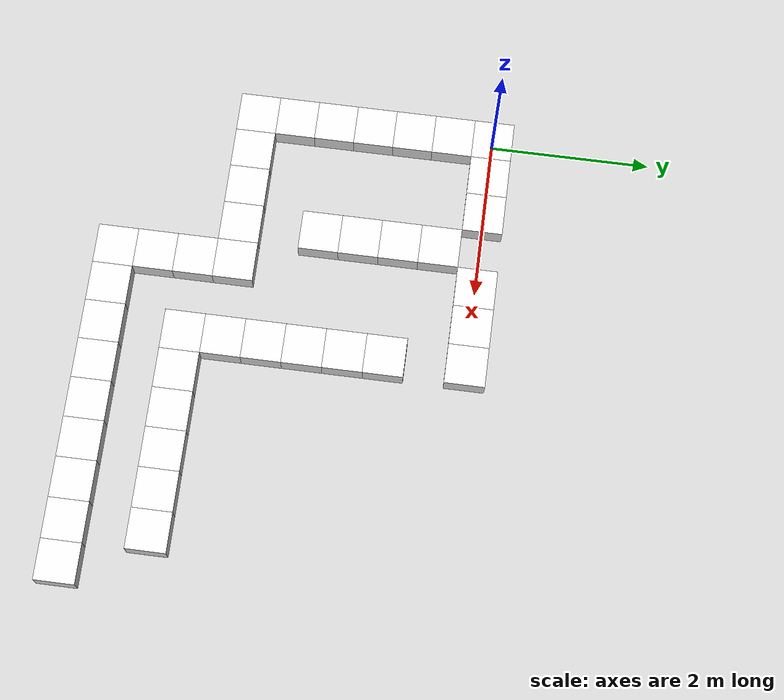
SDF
<?xml version="1.0" ?>
    <sdf version="1.6">
    <world name="default">

        <!-- Define a simple ground plane -->
        <include>
            <uri>model://ground_plane</uri>
        </include>

        <model name="maze_wall_0.0_0.0">
        <static>true</static>
        <link name="link">
            <collision name="collision">
            <geometry>
                <box>
                <size>0.5 0.5 0.5</size>
                </box>
            </geometry>
            </collision>
            <visual name="visual">
            <geometry>
                <box>
                <size>0.5 0.5 0.5</size>
                </box>
            </geometry>

            <material>
                <script>
                <uri>file://media/materials/scripts/gazebo.material</uri>
                <name>Gazebo/White</name>
                </script>
            </material>

            </visual>
        </link>
        <pose>0.0 0.0 0 0 0 0</pose>
        </model>

        <model name="maze_wall_0.5_0.0">
        <static>true</static>
        <link name="link">
            <collision name="collision">
            <geometry>
                <box>
                <size>0.5 0.5 0.5</size>
                </box>
            </geometry>
            </collision>
            <visual name="visual">
            <geometry>
                <box>
                <size>0.5 0.5 0.5</size>
                </box>
            </geometry>

            <material>
                <script>
                <uri>file://media/materials/scripts/gazebo.material</uri>
                <name>Gazebo/White</name>
                </script>
            </material>

            </visual>
        </link>
        <pose>0.5 0.0 0 0 0 0</pose>
        </model>

        <model name="maze_wall_1.0_0.0">
        <static>true</static>
        <link name="link">
            <collision name="collision">
            <geometry>
                <box>
                <size>0.5 0.5 0.5</size>
                </box>
            </geometry>
            </collision>
            <visual name="visual">
            <geometry>
                <box>
                <size>0.5 0.5 0.5</size>
                </box>
            </geometry>

            <material>
                <script>
                <uri>file://media/materials/scripts/gazebo.material</uri>
                <name>Gazebo/White</name>
                </script>
            </material>

            </visual>
        </link>
        <pose>1.0 0.0 0 0 0 0</pose>
        </model>

        <model name="maze_wall_2.0_0.0">
        <static>true</static>
        <link name="link">
            <collision name="collision">
            <geometry>
                <box>
                <size>0.5 0.5 0.5</size>
                </box>
            </geometry>
            </collision>
            <visual name="visual">
            <geometry>
                <box>
                <size>0.5 0.5 0.5</size>
                </box>
            </geometry>

            <material>
                <script>
                <uri>file://media/materials/scripts/gazebo.material</uri>
                <name>Gazebo/White</name>
                </script>
            </material>

            </visual>
        </link>
        <pose>2.0 0.0 0 0 0 0</pose>
        </model>

        <model name="maze_wall_2.5_0.0">
        <static>true</static>
        <link name="link">
            <collision name="collision">
            <geometry>
                <box>
                <size>0.5 0.5 0.5</size>
                </box>
            </geometry>
            </collision>
            <visual name="visual">
            <geometry>
                <box>
                <size>0.5 0.5 0.5</size>
                </box>
            </geometry>

            <material>
                <script>
                <uri>file://media/materials/scripts/gazebo.material</uri>
                <name>Gazebo/White</name>
                </script>
            </material>

            </visual>
        </link>
        <pose>2.5 0.0 0 0 0 0</pose>
        </model>

        <model name="maze_wall_3.0_0.0">
        <static>true</static>
        <link name="link">
            <collision name="collision">
            <geometry>
                <box>
                <size>0.5 0.5 0.5</size>
                </box>
            </geometry>
            </collision>
            <visual name="visual">
            <geometry>
                <box>
                <size>0.5 0.5 0.5</size>
                </box>
            </geometry>

            <material>
                <script>
                <uri>file://media/materials/scripts/gazebo.material</uri>
                <name>Gazebo/White</name>
                </script>
            </material>

            </visual>
        </link>
        <pose>3.0 0.0 0 0 0 0</pose>
        </model>

        <model name="maze_wall_0.0_-0.5">
        <static>true</static>
        <link name="link">
            <collision name="collision">
            <geometry>
                <box>
                <size>0.5 0.5 0.5</size>
                </box>
            </geometry>
            </collision>
            <visual name="visual">
            <geometry>
                <box>
                <size>0.5 0.5 0.5</size>
                </box>
            </geometry>

            <material>
                <script>
                <uri>file://media/materials/scripts/gazebo.material</uri>
                <name>Gazebo/White</name>
                </script>
            </material>

            </visual>
        </link>
        <pose>0.0 -0.5 0 0 0 0</pose>
        </model>

        <model name="maze_wall_1.5_-0.5">
        <static>true</static>
        <link name="link">
            <collision name="collision">
            <geometry>
                <box>
                <size>0.5 0.5 0.5</size>
                </box>
            </geometry>
            </collision>
            <visual name="visual">
            <geometry>
                <box>
                <size>0.5 0.5 0.5</size>
                </box>
            </geometry>

            <material>
                <script>
                <uri>file://media/materials/scripts/gazebo.material</uri>
                <name>Gazebo/White</name>
                </script>
            </material>

            </visual>
        </link>
        <pose>1.5 -0.5 0 0 0 0</pose>
        </model>

        <model name="maze_wall_0.0_-1.0">
        <static>true</static>
        <link name="link">
            <collision name="collision">
            <geometry>
                <box>
                <size>0.5 0.5 0.5</size>
                </box>
            </geometry>
            </collision>
            <visual name="visual">
            <geometry>
                <box>
                <size>0.5 0.5 0.5</size>
                </box>
            </geometry>

            <material>
                <script>
                <uri>file://media/materials/scripts/gazebo.material</uri>
                <name>Gazebo/White</name>
                </script>
            </material>

            </visual>
        </link>
        <pose>0.0 -1.0 0 0 0 0</pose>
        </model>

        <model name="maze_wall_1.5_-1.0">
        <static>true</static>
        <link name="link">
            <collision name="collision">
            <geometry>
                <box>
                <size>0.5 0.5 0.5</size>
                </box>
            </geometry>
            </collision>
            <visual name="visual">
            <geometry>
                <box>
                <size>0.5 0.5 0.5</size>
                </box>
            </geometry>

            <material>
                <script>
                <uri>file://media/materials/scripts/gazebo.material</uri>
                <name>Gazebo/White</name>
                </script>
            </material>

            </visual>
        </link>
        <pose>1.5 -1.0 0 0 0 0</pose>
        </model>

        <model name="maze_wall_3.0_-1.0">
        <static>true</static>
        <link name="link">
            <collision name="collision">
            <geometry>
                <box>
                <size>0.5 0.5 0.5</size>
                </box>
            </geometry>
            </collision>
            <visual name="visual">
            <geometry>
                <box>
                <size>0.5 0.5 0.5</size>
                </box>
            </geometry>

            <material>
                <script>
                <uri>file://media/materials/scripts/gazebo.material</uri>
                <name>Gazebo/White</name>
                </script>
            </material>

            </visual>
        </link>
        <pose>3.0 -1.0 0 0 0 0</pose>
        </model>

        <model name="maze_wall_0.0_-1.5">
        <static>true</static>
        <link name="link">
            <collision name="collision">
            <geometry>
                <box>
                <size>0.5 0.5 0.5</size>
                </box>
            </geometry>
            </collision>
            <visual name="visual">
            <geometry>
                <box>
                <size>0.5 0.5 0.5</size>
                </box>
            </geometry>

            <material>
                <script>
                <uri>file://media/materials/scripts/gazebo.material</uri>
                <name>Gazebo/White</name>
                </script>
            </material>

            </visual>
        </link>
        <pose>0.0 -1.5 0 0 0 0</pose>
        </model>

        <model name="maze_wall_1.5_-1.5">
        <static>true</static>
        <link name="link">
            <collision name="collision">
            <geometry>
                <box>
                <size>0.5 0.5 0.5</size>
                </box>
            </geometry>
            </collision>
            <visual name="visual">
            <geometry>
                <box>
                <size>0.5 0.5 0.5</size>
                </box>
            </geometry>

            <material>
                <script>
                <uri>file://media/materials/scripts/gazebo.material</uri>
                <name>Gazebo/White</name>
                </script>
            </material>

            </visual>
        </link>
        <pose>1.5 -1.5 0 0 0 0</pose>
        </model>

        <model name="maze_wall_3.0_-1.5">
        <static>true</static>
        <link name="link">
            <collision name="collision">
            <geometry>
                <box>
                <size>0.5 0.5 0.5</size>
                </box>
            </geometry>
            </collision>
            <visual name="visual">
            <geometry>
                <box>
                <size>0.5 0.5 0.5</size>
                </box>
            </geometry>

            <material>
                <script>
                <uri>file://media/materials/scripts/gazebo.material</uri>
                <name>Gazebo/White</name>
                </script>
            </material>

            </visual>
        </link>
        <pose>3.0 -1.5 0 0 0 0</pose>
        </model>

        <model name="maze_wall_0.0_-2.0">
        <static>true</static>
        <link name="link">
            <collision name="collision">
            <geometry>
                <box>
                <size>0.5 0.5 0.5</size>
                </box>
            </geometry>
            </collision>
            <visual name="visual">
            <geometry>
                <box>
                <size>0.5 0.5 0.5</size>
                </box>
            </geometry>

            <material>
                <script>
                <uri>file://media/materials/scripts/gazebo.material</uri>
                <name>Gazebo/White</name>
                </script>
            </material>

            </visual>
        </link>
        <pose>0.0 -2.0 0 0 0 0</pose>
        </model>

        <model name="maze_wall_1.5_-2.0">
        <static>true</static>
        <link name="link">
            <collision name="collision">
            <geometry>
                <box>
                <size>0.5 0.5 0.5</size>
                </box>
            </geometry>
            </collision>
            <visual name="visual">
            <geometry>
                <box>
                <size>0.5 0.5 0.5</size>
                </box>
            </geometry>

            <material>
                <script>
                <uri>file://media/materials/scripts/gazebo.material</uri>
                <name>Gazebo/White</name>
                </script>
            </material>

            </visual>
        </link>
        <pose>1.5 -2.0 0 0 0 0</pose>
        </model>

        <model name="maze_wall_3.0_-2.0">
        <static>true</static>
        <link name="link">
            <collision name="collision">
            <geometry>
                <box>
                <size>0.5 0.5 0.5</size>
                </box>
            </geometry>
            </collision>
            <visual name="visual">
            <geometry>
                <box>
                <size>0.5 0.5 0.5</size>
                </box>
            </geometry>

            <material>
                <script>
                <uri>file://media/materials/scripts/gazebo.material</uri>
                <name>Gazebo/White</name>
                </script>
            </material>

            </visual>
        </link>
        <pose>3.0 -2.0 0 0 0 0</pose>
        </model>

        <model name="maze_wall_0.0_-2.5">
        <static>true</static>
        <link name="link">
            <collision name="collision">
            <geometry>
                <box>
                <size>0.5 0.5 0.5</size>
                </box>
            </geometry>
            </collision>
            <visual name="visual">
            <geometry>
                <box>
                <size>0.5 0.5 0.5</size>
                </box>
            </geometry>

            <material>
                <script>
                <uri>file://media/materials/scripts/gazebo.material</uri>
                <name>Gazebo/White</name>
                </script>
            </material>

            </visual>
        </link>
        <pose>0.0 -2.5 0 0 0 0</pose>
        </model>

        <model name="maze_wall_3.0_-2.5">
        <static>true</static>
        <link name="link">
            <collision name="collision">
            <geometry>
                <box>
                <size>0.5 0.5 0.5</size>
                </box>
            </geometry>
            </collision>
            <visual name="visual">
            <geometry>
                <box>
                <size>0.5 0.5 0.5</size>
                </box>
            </geometry>

            <material>
                <script>
                <uri>file://media/materials/scripts/gazebo.material</uri>
                <name>Gazebo/White</name>
                </script>
            </material>

            </visual>
        </link>
        <pose>3.0 -2.5 0 0 0 0</pose>
        </model>

        <model name="maze_wall_0.0_-3.0">
        <static>true</static>
        <link name="link">
            <collision name="collision">
            <geometry>
                <box>
                <size>0.5 0.5 0.5</size>
                </box>
            </geometry>
            </collision>
            <visual name="visual">
            <geometry>
                <box>
                <size>0.5 0.5 0.5</size>
                </box>
            </geometry>

            <material>
                <script>
                <uri>file://media/materials/scripts/gazebo.material</uri>
                <name>Gazebo/White</name>
                </script>
            </material>

            </visual>
        </link>
        <pose>0.0 -3.0 0 0 0 0</pose>
        </model>

        <model name="maze_wall_0.5_-3.0">
        <static>true</static>
        <link name="link">
            <collision name="collision">
            <geometry>
                <box>
                <size>0.5 0.5 0.5</size>
                </box>
            </geometry>
            </collision>
            <visual name="visual">
            <geometry>
                <box>
                <size>0.5 0.5 0.5</size>
                </box>
            </geometry>

            <material>
                <script>
                <uri>file://media/materials/scripts/gazebo.material</uri>
                <name>Gazebo/White</name>
                </script>
            </material>

            </visual>
        </link>
        <pose>0.5 -3.0 0 0 0 0</pose>
        </model>

        <model name="maze_wall_1.0_-3.0">
        <static>true</static>
        <link name="link">
            <collision name="collision">
            <geometry>
                <box>
                <size>0.5 0.5 0.5</size>
                </box>
            </geometry>
            </collision>
            <visual name="visual">
            <geometry>
                <box>
                <size>0.5 0.5 0.5</size>
                </box>
            </geometry>

            <material>
                <script>
                <uri>file://media/materials/scripts/gazebo.material</uri>
                <name>Gazebo/White</name>
                </script>
            </material>

            </visual>
        </link>
        <pose>1.0 -3.0 0 0 0 0</pose>
        </model>

        <model name="maze_wall_1.5_-3.0">
        <static>true</static>
        <link name="link">
            <collision name="collision">
            <geometry>
                <box>
                <size>0.5 0.5 0.5</size>
                </box>
            </geometry>
            </collision>
            <visual name="visual">
            <geometry>
                <box>
                <size>0.5 0.5 0.5</size>
                </box>
            </geometry>

            <material>
                <script>
                <uri>file://media/materials/scripts/gazebo.material</uri>
                <name>Gazebo/White</name>
                </script>
            </material>

            </visual>
        </link>
        <pose>1.5 -3.0 0 0 0 0</pose>
        </model>

        <model name="maze_wall_2.0_-3.0">
        <static>true</static>
        <link name="link">
            <collision name="collision">
            <geometry>
                <box>
                <size>0.5 0.5 0.5</size>
                </box>
            </geometry>
            </collision>
            <visual name="visual">
            <geometry>
                <box>
                <size>0.5 0.5 0.5</size>
                </box>
            </geometry>

            <material>
                <script>
                <uri>file://media/materials/scripts/gazebo.material</uri>
                <name>Gazebo/White</name>
                </script>
            </material>

            </visual>
        </link>
        <pose>2.0 -3.0 0 0 0 0</pose>
        </model>

        <model name="maze_wall_3.0_-3.0">
        <static>true</static>
        <link name="link">
            <collision name="collision">
            <geometry>
                <box>
                <size>0.5 0.5 0.5</size>
                </box>
            </geometry>
            </collision>
            <visual name="visual">
            <geometry>
                <box>
                <size>0.5 0.5 0.5</size>
                </box>
            </geometry>

            <material>
                <script>
                <uri>file://media/materials/scripts/gazebo.material</uri>
                <name>Gazebo/White</name>
                </script>
            </material>

            </visual>
        </link>
        <pose>3.0 -3.0 0 0 0 0</pose>
        </model>

        <model name="maze_wall_2.0_-3.5">
        <static>true</static>
        <link name="link">
            <collision name="collision">
            <geometry>
                <box>
                <size>0.5 0.5 0.5</size>
                </box>
            </geometry>
            </collision>
            <visual name="visual">
            <geometry>
                <box>
                <size>0.5 0.5 0.5</size>
                </box>
            </geometry>

            <material>
                <script>
                <uri>file://media/materials/scripts/gazebo.material</uri>
                <name>Gazebo/White</name>
                </script>
            </material>

            </visual>
        </link>
        <pose>2.0 -3.5 0 0 0 0</pose>
        </model>

        <model name="maze_wall_3.0_-3.5">
        <static>true</static>
        <link name="link">
            <collision name="collision">
            <geometry>
                <box>
                <size>0.5 0.5 0.5</size>
                </box>
            </geometry>
            </collision>
            <visual name="visual">
            <geometry>
                <box>
                <size>0.5 0.5 0.5</size>
                </box>
            </geometry>

            <material>
                <script>
                <uri>file://media/materials/scripts/gazebo.material</uri>
                <name>Gazebo/White</name>
                </script>
            </material>

            </visual>
        </link>
        <pose>3.0 -3.5 0 0 0 0</pose>
        </model>

        <model name="maze_wall_3.5_-3.5">
        <static>true</static>
        <link name="link">
            <collision name="collision">
            <geometry>
                <box>
                <size>0.5 0.5 0.5</size>
                </box>
            </geometry>
            </collision>
            <visual name="visual">
            <geometry>
                <box>
                <size>0.5 0.5 0.5</size>
                </box>
            </geometry>

            <material>
                <script>
                <uri>file://media/materials/scripts/gazebo.material</uri>
                <name>Gazebo/White</name>
                </script>
            </material>

            </visual>
        </link>
        <pose>3.5 -3.5 0 0 0 0</pose>
        </model>

        <model name="maze_wall_4.0_-3.5">
        <static>true</static>
        <link name="link">
            <collision name="collision">
            <geometry>
                <box>
                <size>0.5 0.5 0.5</size>
                </box>
            </geometry>
            </collision>
            <visual name="visual">
            <geometry>
                <box>
                <size>0.5 0.5 0.5</size>
                </box>
            </geometry>

            <material>
                <script>
                <uri>file://media/materials/scripts/gazebo.material</uri>
                <name>Gazebo/White</name>
                </script>
            </material>

            </visual>
        </link>
        <pose>4.0 -3.5 0 0 0 0</pose>
        </model>

        <model name="maze_wall_4.5_-3.5">
        <static>true</static>
        <link name="link">
            <collision name="collision">
            <geometry>
                <box>
                <size>0.5 0.5 0.5</size>
                </box>
            </geometry>
            </collision>
            <visual name="visual">
            <geometry>
                <box>
                <size>0.5 0.5 0.5</size>
                </box>
            </geometry>

            <material>
                <script>
                <uri>file://media/materials/scripts/gazebo.material</uri>
                <name>Gazebo/White</name>
                </script>
            </material>

            </visual>
        </link>
        <pose>4.5 -3.5 0 0 0 0</pose>
        </model>

        <model name="maze_wall_5.0_-3.5">
        <static>true</static>
        <link name="link">
            <collision name="collision">
            <geometry>
                <box>
                <size>0.5 0.5 0.5</size>
                </box>
            </geometry>
            </collision>
            <visual name="visual">
            <geometry>
                <box>
                <size>0.5 0.5 0.5</size>
                </box>
            </geometry>

            <material>
                <script>
                <uri>file://media/materials/scripts/gazebo.material</uri>
                <name>Gazebo/White</name>
                </script>
            </material>

            </visual>
        </link>
        <pose>5.0 -3.5 0 0 0 0</pose>
        </model>

        <model name="maze_wall_5.5_-3.5">
        <static>true</static>
        <link name="link">
            <collision name="collision">
            <geometry>
                <box>
                <size>0.5 0.5 0.5</size>
                </box>
            </geometry>
            </collision>
            <visual name="visual">
            <geometry>
                <box>
                <size>0.5 0.5 0.5</size>
                </box>
            </geometry>

            <material>
                <script>
                <uri>file://media/materials/scripts/gazebo.material</uri>
                <name>Gazebo/White</name>
                </script>
            </material>

            </visual>
        </link>
        <pose>5.5 -3.5 0 0 0 0</pose>
        </model>

        <model name="maze_wall_2.0_-4.0">
        <static>true</static>
        <link name="link">
            <collision name="collision">
            <geometry>
                <box>
                <size>0.5 0.5 0.5</size>
                </box>
            </geometry>
            </collision>
            <visual name="visual">
            <geometry>
                <box>
                <size>0.5 0.5 0.5</size>
                </box>
            </geometry>

            <material>
                <script>
                <uri>file://media/materials/scripts/gazebo.material</uri>
                <name>Gazebo/White</name>
                </script>
            </material>

            </visual>
        </link>
        <pose>2.0 -4.0 0 0 0 0</pose>
        </model>

        <model name="maze_wall_2.0_-4.5">
        <static>true</static>
        <link name="link">
            <collision name="collision">
            <geometry>
                <box>
                <size>0.5 0.5 0.5</size>
                </box>
            </geometry>
            </collision>
            <visual name="visual">
            <geometry>
                <box>
                <size>0.5 0.5 0.5</size>
                </box>
            </geometry>

            <material>
                <script>
                <uri>file://media/materials/scripts/gazebo.material</uri>
                <name>Gazebo/White</name>
                </script>
            </material>

            </visual>
        </link>
        <pose>2.0 -4.5 0 0 0 0</pose>
        </model>

        <model name="maze_wall_2.5_-4.5">
        <static>true</static>
        <link name="link">
            <collision name="collision">
            <geometry>
                <box>
                <size>0.5 0.5 0.5</size>
                </box>
            </geometry>
            </collision>
            <visual name="visual">
            <geometry>
                <box>
                <size>0.5 0.5 0.5</size>
                </box>
            </geometry>

            <material>
                <script>
                <uri>file://media/materials/scripts/gazebo.material</uri>
                <name>Gazebo/White</name>
                </script>
            </material>

            </visual>
        </link>
        <pose>2.5 -4.5 0 0 0 0</pose>
        </model>

        <model name="maze_wall_3.0_-4.5">
        <static>true</static>
        <link name="link">
            <collision name="collision">
            <geometry>
                <box>
                <size>0.5 0.5 0.5</size>
                </box>
            </geometry>
            </collision>
            <visual name="visual">
            <geometry>
                <box>
                <size>0.5 0.5 0.5</size>
                </box>
            </geometry>

            <material>
                <script>
                <uri>file://media/materials/scripts/gazebo.material</uri>
                <name>Gazebo/White</name>
                </script>
            </material>

            </visual>
        </link>
        <pose>3.0 -4.5 0 0 0 0</pose>
        </model>

        <model name="maze_wall_3.5_-4.5">
        <static>true</static>
        <link name="link">
            <collision name="collision">
            <geometry>
                <box>
                <size>0.5 0.5 0.5</size>
                </box>
            </geometry>
            </collision>
            <visual name="visual">
            <geometry>
                <box>
                <size>0.5 0.5 0.5</size>
                </box>
            </geometry>

            <material>
                <script>
                <uri>file://media/materials/scripts/gazebo.material</uri>
                <name>Gazebo/White</name>
                </script>
            </material>

            </visual>
        </link>
        <pose>3.5 -4.5 0 0 0 0</pose>
        </model>

        <model name="maze_wall_4.0_-4.5">
        <static>true</static>
        <link name="link">
            <collision name="collision">
            <geometry>
                <box>
                <size>0.5 0.5 0.5</size>
                </box>
            </geometry>
            </collision>
            <visual name="visual">
            <geometry>
                <box>
                <size>0.5 0.5 0.5</size>
                </box>
            </geometry>

            <material>
                <script>
                <uri>file://media/materials/scripts/gazebo.material</uri>
                <name>Gazebo/White</name>
                </script>
            </material>

            </visual>
        </link>
        <pose>4.0 -4.5 0 0 0 0</pose>
        </model>

        <model name="maze_wall_4.5_-4.5">
        <static>true</static>
        <link name="link">
            <collision name="collision">
            <geometry>
                <box>
                <size>0.5 0.5 0.5</size>
                </box>
            </geometry>
            </collision>
            <visual name="visual">
            <geometry>
                <box>
                <size>0.5 0.5 0.5</size>
                </box>
            </geometry>

            <material>
                <script>
                <uri>file://media/materials/scripts/gazebo.material</uri>
                <name>Gazebo/White</name>
                </script>
            </material>

            </visual>
        </link>
        <pose>4.5 -4.5 0 0 0 0</pose>
        </model>

        <model name="maze_wall_5.0_-4.5">
        <static>true</static>
        <link name="link">
            <collision name="collision">
            <geometry>
                <box>
                <size>0.5 0.5 0.5</size>
                </box>
            </geometry>
            </collision>
            <visual name="visual">
            <geometry>
                <box>
                <size>0.5 0.5 0.5</size>
                </box>
            </geometry>

            <material>
                <script>
                <uri>file://media/materials/scripts/gazebo.material</uri>
                <name>Gazebo/White</name>
                </script>
            </material>

            </visual>
        </link>
        <pose>5.0 -4.5 0 0 0 0</pose>
        </model>

        <model name="maze_wall_5.5_-4.5">
        <static>true</static>
        <link name="link">
            <collision name="collision">
            <geometry>
                <box>
                <size>0.5 0.5 0.5</size>
                </box>
            </geometry>
            </collision>
            <visual name="visual">
            <geometry>
                <box>
                <size>0.5 0.5 0.5</size>
                </box>
            </geometry>

            <material>
                <script>
                <uri>file://media/materials/scripts/gazebo.material</uri>
                <name>Gazebo/White</name>
                </script>
            </material>

            </visual>
        </link>
        <pose>5.5 -4.5 0 0 0 0</pose>
        </model>

        <model name="maze_wall_6.0_-4.5">
        <static>true</static>
        <link name="link">
            <collision name="collision">
            <geometry>
                <box>
                <size>0.5 0.5 0.5</size>
                </box>
            </geometry>
            </collision>
            <visual name="visual">
            <geometry>
                <box>
                <size>0.5 0.5 0.5</size>
                </box>
            </geometry>

            <material>
                <script>
                <uri>file://media/materials/scripts/gazebo.material</uri>
                <name>Gazebo/White</name>
                </script>
            </material>

            </visual>
        </link>
        <pose>6.0 -4.5 0 0 0 0</pose>
        </model>

    </world>
    </sdf>
